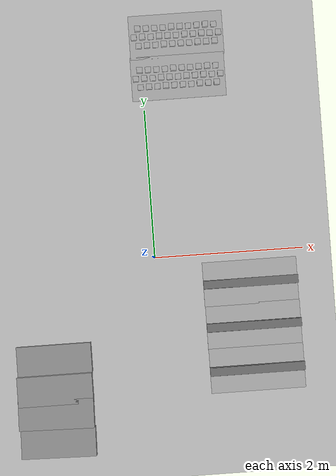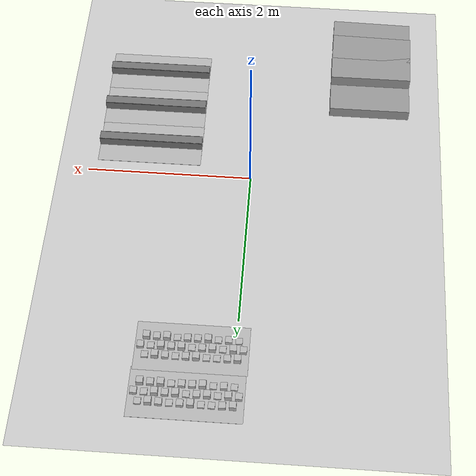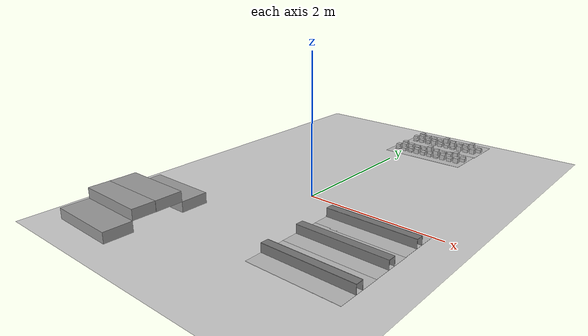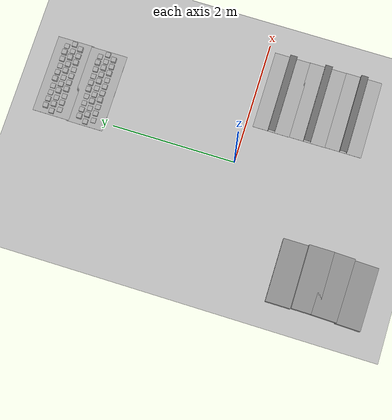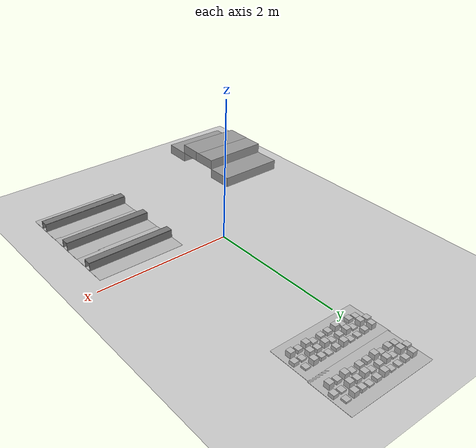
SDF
<sdf version="1.6">
 <world name="default">
  <light name="sun" type="directional">
   <pose>0 0 10 0 -0 0</pose>
   <diffuse>0.8 0.8 0.8 1</diffuse>
   <specular>0.1 0.1 0.1 1</specular>
   <attenuation>
    <range>1000</range>
    <constant>0.9</constant>
    <linear>0.01</linear>
    <quadratic>0.001</quadratic>
   </attenuation>
   <direction>-0.5 0.5 -1</direction>
  </light>
  <model name="ground_plane">
   <static>1</static>
   <link name="link">
    <collision name="collision">
     <geometry><plane><normal>0 0 1</normal><size>100 100</size></plane></geometry>
     <surface><friction><ode><mu>100</mu><mu2>50</mu2></ode></friction></surface>
    </collision>
    <visual name="visual">
     <cast_shadows>0</cast_shadows>
     <geometry><plane><normal>0 0 1</normal><size>100 100</size></plane></geometry>
     <material>
      <script><uri>file://media/materials/scripts/gazebo.material</uri><name>Gazebo/Grey</name></script>
     </material>
    </visual>
   </link>
  </model>
  <gravity>0 0 -9.8</gravity>
  <magnetic_field>6e-06 2.3e-05 -4.2e-05</magnetic_field>
  <atmosphere type="adiabatic"/>
  <physics name="default_physics" default="0" type="ode">
   <max_step_size>0.001</max_step_size>
   <real_time_factor>1</real_time_factor>
   <real_time_update_rate>1000</real_time_update_rate>
  </physics>
  <scene><ambient>0.4 0.4 0.4 1</ambient><background>0.7 0.7 0.7 1</background><shadows>1</shadows></scene>
  <spherical_coordinates>
   <surface_model>EARTH_WGS84</surface_model>
   <latitude_deg>0</latitude_deg>
   <longitude_deg>0</longitude_deg>
   <elevation>0</elevation>
   <heading_deg>0</heading_deg>
  </spherical_coordinates>
  <model name="frc2016_rockwall">
   <static>1</static>
   <link name="link">
    <inertial>
     <mass>10</mass>
     <pose>0 0 0.08974 0 -0 0</pose>
     <inertia><ixx>0.327091</ixx><ixy>0</ixy><ixz>0</ixz><iyy>1.37417</iyy><iyz>0</iyz><izz>1.64109</izz></inertia>
    </inertial>
    <visual name="platform">
     <pose>0 0 0.06432 0 -0 0</pose>
     <geometry><box><size>1.27 0.5969 0.003175</size></box></geometry>
    </visual>
    <collision name="platform">
     <pose>0 0 0.06432 0 -0 0</pose>
     <geometry><box><size>1.27 0.5969 0.003175</size></box></geometry>
    </collision>
    <visual name="up1">
     <pose>0 0.05166 0.12537 0 -0 0</pose>
     <geometry><box><size>1.27 0.00462 0.11892</size></box></geometry>
     <material><ambient>0.46 0.46 0.46 1</ambient><diffuse>0.46 0.46 0.46 1</diffuse></material>
    </visual>
    <collision name="up1">
     <pose>0 0.05166 0.12537 0 -0 0</pose>
     <geometry><box><size>1.27 0.00462 0.11892</size></box></geometry>
    </collision>
    <visual name="up2">
     <pose>0 -0.05801 0.12537 0 -0 0</pose>
     <geometry><box><size>1.27 0.00462 0.11892</size></box></geometry>
     <material><ambient>0.46 0.46 0.46 1</ambient><diffuse>0.46 0.46 0.46 1</diffuse></material>
    </visual>
    <collision name="up2">
     <pose>0 -0.05801 0.12537 0 -0 0</pose>
     <geometry><box><size>1.27 0.00462 0.11892</size></box></geometry>
    </collision>
    <visual name="top">
     <pose>0 -0.00249 0.18252 0 -0 0</pose>
     <geometry><box><size>1.27 0.1143 0.00462</size></box></geometry>
     <material><ambient>0.46 0.46 0.46 1</ambient><diffuse>0.46 0.46 0.46 1</diffuse></material>
    </visual>
    <collision name="top">
     <pose>0 -0.00249 0.18252 0 -0 0</pose>
     <geometry><box><size>1.27 0.1143 0.00462</size></box></geometry>
    </collision>
   </link>
   <pose>1.25957 -0.410415 0 0 -0 0</pose>
  </model>
  <model name="frc2016_rockwall_0">
   <static>1</static>
   <link name="link">
    <inertial>
     <mass>10</mass>
     <pose>0 0 0.08974 0 -0 0</pose>
     <inertia><ixx>0.327091</ixx><ixy>0</ixy><ixz>0</ixz><iyy>1.37417</iyy><iyz>0</iyz><izz>1.64109</izz></inertia>
    </inertial>
    <visual name="platform">
     <pose>0 0 0.06432 0 -0 0</pose>
     <geometry><box><size>1.27 0.5969 0.003175</size></box></geometry>
    </visual>
    <collision name="platform">
     <pose>0 0 0.06432 0 -0 0</pose>
     <geometry><box><size>1.27 0.5969 0.003175</size></box></geometry>
    </collision>
    <visual name="up1">
     <pose>0 0.05166 0.12537 0 -0 0</pose>
     <geometry><box><size>1.27 0.00462 0.11892</size></box></geometry>
     <material><ambient>0.46 0.46 0.46 1</ambient><diffuse>0.46 0.46 0.46 1</diffuse></material>
    </visual>
    <collision name="up1">
     <pose>0 0.05166 0.12537 0 -0 0</pose>
     <geometry><box><size>1.27 0.00462 0.11892</size></box></geometry>
    </collision>
    <visual name="up2">
     <pose>0 -0.05801 0.12537 0 -0 0</pose>
     <geometry><box><size>1.27 0.00462 0.11892</size></box></geometry>
     <material><ambient>0.46 0.46 0.46 1</ambient><diffuse>0.46 0.46 0.46 1</diffuse></material>
    </visual>
    <collision name="up2">
     <pose>0 -0.05801 0.12537 0 -0 0</pose>
     <geometry><box><size>1.27 0.00462 0.11892</size></box></geometry>
    </collision>
    <visual name="top">
     <pose>0 -0.00249 0.18252 0 -0 0</pose>
     <geometry><box><size>1.27 0.1143 0.00462</size></box></geometry>
     <material><ambient>0.46 0.46 0.46 1</ambient><diffuse>0.46 0.46 0.46 1</diffuse></material>
    </visual>
    <collision name="top">
     <pose>0 -0.00249 0.18252 0 -0 0</pose>
     <geometry><box><size>1.27 0.1143 0.00462</size></box></geometry>
    </collision>
   </link>
   <pose>1.26386 -0.989655 0 0 -0 0</pose>
  </model>
  <model name="Untitled_0">
   <pose>-1.4412 -1.46412 0 0 -0 0</pose>
   <link name="Stairs_5">
    <visual name="Stairs_5_Visual_0">
     <pose>0 0.1975 0.075 0 -0 0</pose>
     <geometry><box><size>1 0.395 0.15</size></box></geometry>
     <material>
      <script><uri>file://media/materials/scripts/gazebo.material</uri><name>Gazebo/Grey</name></script>
      <ambient>1 1 1 1</ambient>
     </material>
     <meta><layer>0</layer></meta>
    </visual>
    <collision name="Stairs_5_Collision_0">
     <geometry><box><size>1 0.395 0.15</size></box></geometry>
     <pose>0 0.1975 0.075 0 -0 0</pose>
    </collision>
    <visual name="Stairs_5_Visual_1">
     <pose>0 -0.1975 0.225 0 -0 0</pose>
     <geometry><box><size>1 0.395 0.15</size></box></geometry>
     <material>
      <script><uri>file://media/materials/scripts/gazebo.material</uri><name>Gazebo/Grey</name></script>
      <ambient>1 1 1 1</ambient>
     </material>
     <meta><layer>0</layer></meta>
    </visual>
    <collision name="Stairs_5_Collision_1">
     <geometry><box><size>1 0.395 0.15</size></box></geometry>
     <pose>0 -0.1975 0.225 0 -0 0</pose>
    </collision>
   </link>
   <static>1</static>
  </model>
  <model name="Untitled_0_clone">
   <pose>-1.45162 -2.17803 0 0 -0 3.11909</pose>
   <link name="Stairs_5">
    <visual name="Stairs_5_Visual_0">
     <pose>0 0.1975 0.075 0 -0 0</pose>
     <geometry><box><size>1 0.395 0.15</size></box></geometry>
     <material>
      <script><uri>file://media/materials/scripts/gazebo.material</uri><name>Gazebo/Grey</name></script>
      <ambient>1 1 1 1</ambient>
     </material>
     <meta><layer>0</layer></meta>
    </visual>
    <collision name="Stairs_5_Collision_0">
     <geometry><box><size>1 0.395 0.15</size></box></geometry>
     <pose>0 0.1975 0.075 0 -0 0</pose>
    </collision>
    <visual name="Stairs_5_Visual_1">
     <pose>0 -0.1975 0.225 0 -0 0</pose>
     <geometry><box><size>1 0.395 0.15</size></box></geometry>
     <material>
      <script><uri>file://media/materials/scripts/gazebo.material</uri><name>Gazebo/Grey</name></script>
      <ambient>1 1 1 1</ambient>
     </material>
     <meta><layer>0</layer></meta>
    </visual>
    <collision name="Stairs_5_Collision_1">
     <geometry><box><size>1 0.395 0.15</size></box></geometry>
     <pose>0 -0.1975 0.225 0 -0 0</pose>
    </collision>
   </link>
   <static>1</static>
  </model>
  <model name="frc2016_rockwall_0_clone">
   <static>1</static>
   <link name="link">
    <inertial>
     <mass>10</mass>
     <pose>0 0 0.08974 0 -0 0</pose>
     <inertia><ixx>0.327091</ixx><ixy>0</ixy><ixz>0</ixz><iyy>1.37417</iyy><iyz>0</iyz><izz>1.64109</izz></inertia>
    </inertial>
    <visual name="platform">
     <pose>0 0 0.06432 0 -0 0</pose>
     <geometry><box><size>1.27 0.5969 0.003175</size></box></geometry>
    </visual>
    <collision name="platform">
     <pose>0 0 0.06432 0 -0 0</pose>
     <geometry><box><size>1.27 0.5969 0.003175</size></box></geometry>
    </collision>
    <visual name="up1">
     <pose>0 0.05166 0.12537 0 -0 0</pose>
     <geometry><box><size>1.27 0.00462 0.11892</size></box></geometry>
     <material><ambient>0.46 0.46 0.46 1</ambient><diffuse>0.46 0.46 0.46 1</diffuse></material>
    </visual>
    <collision name="up1">
     <pose>0 0.05166 0.12537 0 -0 0</pose>
     <geometry><box><size>1.27 0.00462 0.11892</size></box></geometry>
    </collision>
    <visual name="up2">
     <pose>0 -0.05801 0.12537 0 -0 0</pose>
     <geometry><box><size>1.27 0.00462 0.11892</size></box></geometry>
     <material><ambient>0.46 0.46 0.46 1</ambient><diffuse>0.46 0.46 0.46 1</diffuse></material>
    </visual>
    <collision name="up2">
     <pose>0 -0.05801 0.12537 0 -0 0</pose>
     <geometry><box><size>1.27 0.00462 0.11892</size></box></geometry>
    </collision>
    <visual name="top">
     <pose>0 -0.00249 0.18252 0 -0 0</pose>
     <geometry><box><size>1.27 0.1143 0.00462</size></box></geometry>
     <material><ambient>0.46 0.46 0.46 1</ambient><diffuse>0.46 0.46 0.46 1</diffuse></material>
    </visual>
    <collision name="top">
     <pose>0 -0.00249 0.18252 0 -0 0</pose>
     <geometry><box><size>1.27 0.1143 0.00462</size></box></geometry>
    </collision>
   </link>
   <pose>1.26719 -1.57524 0 0 -0 0</pose>
  </model>
  <model name="frc2016_roughterrain_0_clone">
   <static>1</static>
   <link name="link">
    <visual name="platform">
     <pose>0 0 0.08269 0 -0 0</pose>
     <geometry><box><size>1.27 0.5969 0.003175</size></box></geometry>
    </visual>
    <collision name="platform">
     <pose>0 0 0.08269 0 -0 0</pose>
     <geometry><box><size>1.27 0.5969 0.003175</size></box></geometry>
    </collision>
    <visual name="row1_block1_sm">
     <pose>0.51435 0.1143 0.09698 0 -0 0</pose>
     <geometry><box><size>0.0762 0.0762 0.0254</size></box></geometry>
    </visual>
    <collision name="row1_block1_sm">
     <pose>0.51435 0.1143 0.09698 0 -0 0</pose>
     <geometry><box><size>0.0762 0.0762 0.0254</size></box></geometry>
    </collision>
    <visual name="row1_block2_lg">
     <pose>0.40005 0.1143 0.12238 0 -0 0</pose>
     <geometry><box><size>0.0762 0.0762 0.0762</size></box></geometry>
    </visual>
    <collision name="row1_block2_lg">
     <pose>0.40005 0.1143 0.12238 0 -0 0</pose>
     <geometry><box><size>0.0762 0.0762 0.0762</size></box></geometry>
    </collision>
    <visual name="row1_block3_md">
     <pose>0.28575 0.1143 0.10968 0 -0 0</pose>
     <geometry><box><size>0.0762 0.0762 0.0508</size></box></geometry>
    </visual>
    <collision name="row1_block3_md">
     <pose>0.28575 0.1143 0.10968 0 -0 0</pose>
     <geometry><box><size>0.0762 0.0762 0.0508</size></box></geometry>
    </collision>
    <visual name="row1_block4_sm">
     <pose>0.17145 0.1143 0.09698 0 -0 0</pose>
     <geometry><box><size>0.0762 0.0762 0.0254</size></box></geometry>
    </visual>
    <collision name="row1_block4_sm">
     <pose>0.17145 0.1143 0.09698 0 -0 0</pose>
     <geometry><box><size>0.0762 0.0762 0.0254</size></box></geometry>
    </collision>
    <visual name="row1_block5_md">
     <pose>0.05715 0.1143 0.10968 0 -0 0</pose>
     <geometry><box><size>0.0762 0.0762 0.0508</size></box></geometry>
    </visual>
    <collision name="row1_block5_md">
     <pose>0.05715 0.1143 0.10968 0 -0 0</pose>
     <geometry><box><size>0.0762 0.0762 0.0508</size></box></geometry>
    </collision>
    <visual name="row1_block6_lg">
     <pose>-0.05715 0.1143 0.12238 0 -0 0</pose>
     <geometry><box><size>0.0762 0.0762 0.0762</size></box></geometry>
    </visual>
    <collision name="row1_block6_lg">
     <pose>-0.05715 0.1143 0.12238 0 -0 0</pose>
     <geometry><box><size>0.0762 0.0762 0.0762</size></box></geometry>
    </collision>
    <visual name="row1_block7_sm">
     <pose>-0.17145 0.1143 0.09698 0 -0 0</pose>
     <geometry><box><size>0.0762 0.0762 0.0254</size></box></geometry>
    </visual>
    <collision name="row1_block7_sm">
     <pose>-0.17145 0.1143 0.09698 0 -0 0</pose>
     <geometry><box><size>0.0762 0.0762 0.0254</size></box></geometry>
    </collision>
    <visual name="row1_block8_sm">
     <pose>-0.28575 0.1143 0.09698 0 -0 0</pose>
     <geometry><box><size>0.0762 0.0762 0.0254</size></box></geometry>
    </visual>
    <collision name="row1_block8_sm">
     <pose>-0.28575 0.1143 0.09698 0 -0 0</pose>
     <geometry><box><size>0.0762 0.0762 0.0254</size></box></geometry>
    </collision>
    <visual name="row1_block9_md">
     <pose>-0.40005 0.1143 0.10968 0 -0 0</pose>
     <geometry><box><size>0.0762 0.0762 0.0508</size></box></geometry>
    </visual>
    <collision name="row1_block9_md">
     <pose>-0.40005 0.1143 0.10968 0 -0 0</pose>
     <geometry><box><size>0.0762 0.0762 0.0508</size></box></geometry>
    </collision>
    <visual name="row1_block10_lg">
     <pose>-0.51435 0.1143 0.12238 0 -0 0</pose>
     <geometry><box><size>0.0762 0.0762 0.0762</size></box></geometry>
    </visual>
    <collision name="row1_block10_lg">
     <pose>-0.51435 0.1143 0.12238 0 -0 0</pose>
     <geometry><box><size>0.0762 0.0762 0.0762</size></box></geometry>
    </collision>
    <visual name="row2_block1_md">
     <pose>0.5715 0 0.10968 0 -0 0</pose>
     <geometry><box><size>0.0762 0.0762 0.0508</size></box></geometry>
    </visual>
    <collision name="row2_block1_md">
     <pose>0.5715 0 0.10968 0 -0 0</pose>
     <geometry><box><size>0.0762 0.0762 0.0508</size></box></geometry>
    </collision>
    <visual name="row2_block2_sm">
     <pose>0.4572 0 0.09698 0 -0 0</pose>
     <geometry><box><size>0.0762 0.0762 0.0254</size></box></geometry>
    </visual>
    <collision name="row2_block2_sm">
     <pose>0.4572 0 0.09698 0 -0 0</pose>
     <geometry><box><size>0.0762 0.0762 0.0254</size></box></geometry>
    </collision>
    <visual name="row2_block3_lg">
     <pose>0.3429 0 0.12238 0 -0 0</pose>
     <geometry><box><size>0.0762 0.0762 0.0762</size></box></geometry>
    </visual>
    <collision name="row2_block3_lg">
     <pose>0.3429 0 0.12238 0 -0 0</pose>
     <geometry><box><size>0.0762 0.0762 0.0762</size></box></geometry>
    </collision>
    <visual name="row2_block4_md">
     <pose>0.2286 0 0.10968 0 -0 0</pose>
     <geometry><box><size>0.0762 0.0762 0.0508</size></box></geometry>
    </visual>
    <collision name="row2_block4_md">
     <pose>0.2286 0 0.10968 0 -0 0</pose>
     <geometry><box><size>0.0762 0.0762 0.0508</size></box></geometry>
    </collision>
    <visual name="row2_block5_lg">
     <pose>0.1143 0 0.12238 0 -0 0</pose>
     <geometry><box><size>0.0762 0.0762 0.0762</size></box></geometry>
    </visual>
    <collision name="row2_block5_lg">
     <pose>0.1143 0 0.12238 0 -0 0</pose>
     <geometry><box><size>0.0762 0.0762 0.0762</size></box></geometry>
    </collision>
    <visual name="row2_block6_sm">
     <pose>0 0 0.09698 0 -0 0</pose>
     <geometry><box><size>0.0762 0.0762 0.0254</size></box></geometry>
    </visual>
    <collision name="row2_block6_sm">
     <pose>0 0 0.09698 0 -0 0</pose>
     <geometry><box><size>0.0762 0.0762 0.0254</size></box></geometry>
    </collision>
    <visual name="row2_block7_md">
     <pose>-0.1143 0 0.10968 0 -0 0</pose>
     <geometry><box><size>0.0762 0.0762 0.0508</size></box></geometry>
    </visual>
    <collision name="row2_block7_md">
     <pose>-0.1143 0 0.10968 0 -0 0</pose>
     <geometry><box><size>0.0762 0.0762 0.0508</size></box></geometry>
    </collision>
    <visual name="row2_block8_lg">
     <pose>-0.2286 0 0.12238 0 -0 0</pose>
     <geometry><box><size>0.0762 0.0762 0.0762</size></box></geometry>
    </visual>
    <collision name="row2_block8_lg">
     <pose>-0.2286 0 0.12238 0 -0 0</pose>
     <geometry><box><size>0.0762 0.0762 0.0762</size></box></geometry>
    </collision>
    <visual name="row2_block9_sm">
     <pose>-0.3429 0 0.09698 0 -0 0</pose>
     <geometry><box><size>0.0762 0.0762 0.0254</size></box></geometry>
    </visual>
    <collision name="row2_block9_sm">
     <pose>-0.3429 0 0.09698 0 -0 0</pose>
     <geometry><box><size>0.0762 0.0762 0.0254</size></box></geometry>
    </collision>
    <visual name="row2_block10_lg">
     <pose>-0.4572 0 0.12238 0 -0 0</pose>
     <geometry><box><size>0.0762 0.0762 0.0762</size></box></geometry>
    </visual>
    <collision name="row2_block10_lg">
     <pose>-0.4572 0 0.12238 0 -0 0</pose>
     <geometry><box><size>0.0762 0.0762 0.0762</size></box></geometry>
    </collision>
    <visual name="row2_block11_md">
     <pose>-0.5715 0 0.10968 0 -0 0</pose>
     <geometry><box><size>0.0762 0.0762 0.0508</size></box></geometry>
    </visual>
    <collision name="row2_block11_md">
     <pose>-0.5715 0 0.10968 0 -0 0</pose>
     <geometry><box><size>0.0762 0.0762 0.0508</size></box></geometry>
    </collision>
    <visual name="row3_block1_lg">
     <pose>0.51435 -0.1143 0.12238 0 -0 0</pose>
     <geometry><box><size>0.0762 0.0762 0.0762</size></box></geometry>
    </visual>
    <collision name="row3_block1_lg">
     <pose>0.51435 -0.1143 0.12238 0 -0 0</pose>
     <geometry><box><size>0.0762 0.0762 0.0762</size></box></geometry>
    </collision>
    <visual name="row3_block2_md">
     <pose>0.40005 -0.1143 0.10968 0 -0 0</pose>
     <geometry><box><size>0.0762 0.0762 0.0508</size></box></geometry>
    </visual>
    <collision name="row3_block2_md">
     <pose>0.40005 -0.1143 0.10968 0 -0 0</pose>
     <geometry><box><size>0.0762 0.0762 0.0508</size></box></geometry>
    </collision>
    <visual name="row3_block3_lg">
     <pose>0.28575 -0.1143 0.12238 0 -0 0</pose>
     <geometry><box><size>0.0762 0.0762 0.0762</size></box></geometry>
    </visual>
    <collision name="row3_block3_lg">
     <pose>0.28575 -0.1143 0.12238 0 -0 0</pose>
     <geometry><box><size>0.0762 0.0762 0.0762</size></box></geometry>
    </collision>
    <visual name="row3_block4_sm">
     <pose>0.17145 -0.1143 0.09698 0 -0 0</pose>
     <geometry><box><size>0.0762 0.0762 0.0254</size></box></geometry>
    </visual>
    <collision name="row3_block4_sm">
     <pose>0.17145 -0.1143 0.09698 0 -0 0</pose>
     <geometry><box><size>0.0762 0.0762 0.0254</size></box></geometry>
    </collision>
    <visual name="row3_block5_md">
     <pose>0.05715 -0.1143 0.10968 0 -0 0</pose>
     <geometry><box><size>0.0762 0.0762 0.0508</size></box></geometry>
    </visual>
    <collision name="row3_block5_md">
     <pose>0.05715 -0.1143 0.10968 0 -0 0</pose>
     <geometry><box><size>0.0762 0.0762 0.0508</size></box></geometry>
    </collision>
    <visual name="row3_block6_md">
     <pose>-0.05715 -0.1143 0.10968 0 -0 0</pose>
     <geometry><box><size>0.0762 0.0762 0.0508</size></box></geometry>
    </visual>
    <collision name="row3_block6_md">
     <pose>-0.05715 -0.1143 0.10968 0 -0 0</pose>
     <geometry><box><size>0.0762 0.0762 0.0508</size></box></geometry>
    </collision>
    <visual name="row3_block7_lg">
     <pose>-0.17145 -0.1143 0.12238 0 -0 0</pose>
     <geometry><box><size>0.0762 0.0762 0.0762</size></box></geometry>
    </visual>
    <collision name="row3_block7_lg">
     <pose>-0.17145 -0.1143 0.12238 0 -0 0</pose>
     <geometry><box><size>0.0762 0.0762 0.0762</size></box></geometry>
    </collision>
    <visual name="row3_block8_sm">
     <pose>-0.28575 -0.1143 0.09698 0 -0 0</pose>
     <geometry><box><size>0.0762 0.0762 0.0254</size></box></geometry>
    </visual>
    <collision name="row3_block8_sm">
     <pose>-0.28575 -0.1143 0.09698 0 -0 0</pose>
     <geometry><box><size>0.0762 0.0762 0.0254</size></box></geometry>
    </collision>
    <visual name="row3_block9_md">
     <pose>-0.40005 -0.1143 0.10968 0 -0 0</pose>
     <geometry><box><size>0.0762 0.0762 0.0508</size></box></geometry>
    </visual>
    <collision name="row3_block9_md">
     <pose>-0.40005 -0.1143 0.10968 0 -0 0</pose>
     <geometry><box><size>0.0762 0.0762 0.0508</size></box></geometry>
    </collision>
    <visual name="row3_block10_sm">
     <pose>-0.51435 -0.1143 0.09698 0 -0 0</pose>
     <geometry><box><size>0.0762 0.0762 0.0254</size></box></geometry>
    </visual>
    <collision name="row3_block10_sm">
     <pose>-0.51435 -0.1143 0.09698 0 -0 0</pose>
     <geometry><box><size>0.0762 0.0762 0.0254</size></box></geometry>
    </collision>
   </link>
   <pose>0.496317 2.98351 0 0 -0 0</pose>
  </model>
  <model name="frc2016_roughterrain_0_clone_clone">
   <static>1</static>
   <link name="link">
    <visual name="platform">
     <pose>0 0 0.08269 0 -0 0</pose>
     <geometry><box><size>1.27 0.5969 0.003175</size></box></geometry>
    </visual>
    <collision name="platform">
     <pose>0 0 0.08269 0 -0 0</pose>
     <geometry><box><size>1.27 0.5969 0.003175</size></box></geometry>
    </collision>
    <visual name="row1_block1_sm">
     <pose>0.51435 0.1143 0.09698 0 -0 0</pose>
     <geometry><box><size>0.0762 0.0762 0.0254</size></box></geometry>
    </visual>
    <collision name="row1_block1_sm">
     <pose>0.51435 0.1143 0.09698 0 -0 0</pose>
     <geometry><box><size>0.0762 0.0762 0.0254</size></box></geometry>
    </collision>
    <visual name="row1_block2_lg">
     <pose>0.40005 0.1143 0.12238 0 -0 0</pose>
     <geometry><box><size>0.0762 0.0762 0.0762</size></box></geometry>
    </visual>
    <collision name="row1_block2_lg">
     <pose>0.40005 0.1143 0.12238 0 -0 0</pose>
     <geometry><box><size>0.0762 0.0762 0.0762</size></box></geometry>
    </collision>
    <visual name="row1_block3_md">
     <pose>0.28575 0.1143 0.10968 0 -0 0</pose>
     <geometry><box><size>0.0762 0.0762 0.0508</size></box></geometry>
    </visual>
    <collision name="row1_block3_md">
     <pose>0.28575 0.1143 0.10968 0 -0 0</pose>
     <geometry><box><size>0.0762 0.0762 0.0508</size></box></geometry>
    </collision>
    <visual name="row1_block4_sm">
     <pose>0.17145 0.1143 0.09698 0 -0 0</pose>
     <geometry><box><size>0.0762 0.0762 0.0254</size></box></geometry>
    </visual>
    <collision name="row1_block4_sm">
     <pose>0.17145 0.1143 0.09698 0 -0 0</pose>
     <geometry><box><size>0.0762 0.0762 0.0254</size></box></geometry>
    </collision>
    <visual name="row1_block5_md">
     <pose>0.05715 0.1143 0.10968 0 -0 0</pose>
     <geometry><box><size>0.0762 0.0762 0.0508</size></box></geometry>
    </visual>
    <collision name="row1_block5_md">
     <pose>0.05715 0.1143 0.10968 0 -0 0</pose>
     <geometry><box><size>0.0762 0.0762 0.0508</size></box></geometry>
    </collision>
    <visual name="row1_block6_lg">
     <pose>-0.05715 0.1143 0.12238 0 -0 0</pose>
     <geometry><box><size>0.0762 0.0762 0.0762</size></box></geometry>
    </visual>
    <collision name="row1_block6_lg">
     <pose>-0.05715 0.1143 0.12238 0 -0 0</pose>
     <geometry><box><size>0.0762 0.0762 0.0762</size></box></geometry>
    </collision>
    <visual name="row1_block7_sm">
     <pose>-0.17145 0.1143 0.09698 0 -0 0</pose>
     <geometry><box><size>0.0762 0.0762 0.0254</size></box></geometry>
    </visual>
    <collision name="row1_block7_sm">
     <pose>-0.17145 0.1143 0.09698 0 -0 0</pose>
     <geometry><box><size>0.0762 0.0762 0.0254</size></box></geometry>
    </collision>
    <visual name="row1_block8_sm">
     <pose>-0.28575 0.1143 0.09698 0 -0 0</pose>
     <geometry><box><size>0.0762 0.0762 0.0254</size></box></geometry>
    </visual>
    <collision name="row1_block8_sm">
     <pose>-0.28575 0.1143 0.09698 0 -0 0</pose>
     <geometry><box><size>0.0762 0.0762 0.0254</size></box></geometry>
    </collision>
    <visual name="row1_block9_md">
     <pose>-0.40005 0.1143 0.10968 0 -0 0</pose>
     <geometry><box><size>0.0762 0.0762 0.0508</size></box></geometry>
    </visual>
    <collision name="row1_block9_md">
     <pose>-0.40005 0.1143 0.10968 0 -0 0</pose>
     <geometry><box><size>0.0762 0.0762 0.0508</size></box></geometry>
    </collision>
    <visual name="row1_block10_lg">
     <pose>-0.51435 0.1143 0.12238 0 -0 0</pose>
     <geometry><box><size>0.0762 0.0762 0.0762</size></box></geometry>
    </visual>
    <collision name="row1_block10_lg">
     <pose>-0.51435 0.1143 0.12238 0 -0 0</pose>
     <geometry><box><size>0.0762 0.0762 0.0762</size></box></geometry>
    </collision>
    <visual name="row2_block1_md">
     <pose>0.5715 0 0.10968 0 -0 0</pose>
     <geometry><box><size>0.0762 0.0762 0.0508</size></box></geometry>
    </visual>
    <collision name="row2_block1_md">
     <pose>0.5715 0 0.10968 0 -0 0</pose>
     <geometry><box><size>0.0762 0.0762 0.0508</size></box></geometry>
    </collision>
    <visual name="row2_block2_sm">
     <pose>0.4572 0 0.09698 0 -0 0</pose>
     <geometry><box><size>0.0762 0.0762 0.0254</size></box></geometry>
    </visual>
    <collision name="row2_block2_sm">
     <pose>0.4572 0 0.09698 0 -0 0</pose>
     <geometry><box><size>0.0762 0.0762 0.0254</size></box></geometry>
    </collision>
    <visual name="row2_block3_lg">
     <pose>0.3429 0 0.12238 0 -0 0</pose>
     <geometry><box><size>0.0762 0.0762 0.0762</size></box></geometry>
    </visual>
    <collision name="row2_block3_lg">
     <pose>0.3429 0 0.12238 0 -0 0</pose>
     <geometry><box><size>0.0762 0.0762 0.0762</size></box></geometry>
    </collision>
    <visual name="row2_block4_md">
     <pose>0.2286 0 0.10968 0 -0 0</pose>
     <geometry><box><size>0.0762 0.0762 0.0508</size></box></geometry>
    </visual>
    <collision name="row2_block4_md">
     <pose>0.2286 0 0.10968 0 -0 0</pose>
     <geometry><box><size>0.0762 0.0762 0.0508</size></box></geometry>
    </collision>
    <visual name="row2_block5_lg">
     <pose>0.1143 0 0.12238 0 -0 0</pose>
     <geometry><box><size>0.0762 0.0762 0.0762</size></box></geometry>
    </visual>
    <collision name="row2_block5_lg">
     <pose>0.1143 0 0.12238 0 -0 0</pose>
     <geometry><box><size>0.0762 0.0762 0.0762</size></box></geometry>
    </collision>
    <visual name="row2_block6_sm">
     <pose>0 0 0.09698 0 -0 0</pose>
     <geometry><box><size>0.0762 0.0762 0.0254</size></box></geometry>
    </visual>
    <collision name="row2_block6_sm">
     <pose>0 0 0.09698 0 -0 0</pose>
     <geometry><box><size>0.0762 0.0762 0.0254</size></box></geometry>
    </collision>
    <visual name="row2_block7_md">
     <pose>-0.1143 0 0.10968 0 -0 0</pose>
     <geometry><box><size>0.0762 0.0762 0.0508</size></box></geometry>
    </visual>
    <collision name="row2_block7_md">
     <pose>-0.1143 0 0.10968 0 -0 0</pose>
     <geometry><box><size>0.0762 0.0762 0.0508</size></box></geometry>
    </collision>
    <visual name="row2_block8_lg">
     <pose>-0.2286 0 0.12238 0 -0 0</pose>
     <geometry><box><size>0.0762 0.0762 0.0762</size></box></geometry>
    </visual>
    <collision name="row2_block8_lg">
     <pose>-0.2286 0 0.12238 0 -0 0</pose>
     <geometry><box><size>0.0762 0.0762 0.0762</size></box></geometry>
    </collision>
    <visual name="row2_block9_sm">
     <pose>-0.3429 0 0.09698 0 -0 0</pose>
     <geometry><box><size>0.0762 0.0762 0.0254</size></box></geometry>
    </visual>
    <collision name="row2_block9_sm">
     <pose>-0.3429 0 0.09698 0 -0 0</pose>
     <geometry><box><size>0.0762 0.0762 0.0254</size></box></geometry>
    </collision>
    <visual name="row2_block10_lg">
     <pose>-0.4572 0 0.12238 0 -0 0</pose>
     <geometry><box><size>0.0762 0.0762 0.0762</size></box></geometry>
    </visual>
    <collision name="row2_block10_lg">
     <pose>-0.4572 0 0.12238 0 -0 0</pose>
     <geometry><box><size>0.0762 0.0762 0.0762</size></box></geometry>
    </collision>
    <visual name="row2_block11_md">
     <pose>-0.5715 0 0.10968 0 -0 0</pose>
     <geometry><box><size>0.0762 0.0762 0.0508</size></box></geometry>
    </visual>
    <collision name="row2_block11_md">
     <pose>-0.5715 0 0.10968 0 -0 0</pose>
     <geometry><box><size>0.0762 0.0762 0.0508</size></box></geometry>
    </collision>
    <visual name="row3_block1_lg">
     <pose>0.51435 -0.1143 0.12238 0 -0 0</pose>
     <geometry><box><size>0.0762 0.0762 0.0762</size></box></geometry>
    </visual>
    <collision name="row3_block1_lg">
     <pose>0.51435 -0.1143 0.12238 0 -0 0</pose>
     <geometry><box><size>0.0762 0.0762 0.0762</size></box></geometry>
    </collision>
    <visual name="row3_block2_md">
     <pose>0.40005 -0.1143 0.10968 0 -0 0</pose>
     <geometry><box><size>0.0762 0.0762 0.0508</size></box></geometry>
    </visual>
    <collision name="row3_block2_md">
     <pose>0.40005 -0.1143 0.10968 0 -0 0</pose>
     <geometry><box><size>0.0762 0.0762 0.0508</size></box></geometry>
    </collision>
    <visual name="row3_block3_lg">
     <pose>0.28575 -0.1143 0.12238 0 -0 0</pose>
     <geometry><box><size>0.0762 0.0762 0.0762</size></box></geometry>
    </visual>
    <collision name="row3_block3_lg">
     <pose>0.28575 -0.1143 0.12238 0 -0 0</pose>
     <geometry><box><size>0.0762 0.0762 0.0762</size></box></geometry>
    </collision>
    <visual name="row3_block4_sm">
     <pose>0.17145 -0.1143 0.09698 0 -0 0</pose>
     <geometry><box><size>0.0762 0.0762 0.0254</size></box></geometry>
    </visual>
    <collision name="row3_block4_sm">
     <pose>0.17145 -0.1143 0.09698 0 -0 0</pose>
     <geometry><box><size>0.0762 0.0762 0.0254</size></box></geometry>
    </collision>
    <visual name="row3_block5_md">
     <pose>0.05715 -0.1143 0.10968 0 -0 0</pose>
     <geometry><box><size>0.0762 0.0762 0.0508</size></box></geometry>
    </visual>
    <collision name="row3_block5_md">
     <pose>0.05715 -0.1143 0.10968 0 -0 0</pose>
     <geometry><box><size>0.0762 0.0762 0.0508</size></box></geometry>
    </collision>
    <visual name="row3_block6_md">
     <pose>-0.05715 -0.1143 0.10968 0 -0 0</pose>
     <geometry><box><size>0.0762 0.0762 0.0508</size></box></geometry>
    </visual>
    <collision name="row3_block6_md">
     <pose>-0.05715 -0.1143 0.10968 0 -0 0</pose>
     <geometry><box><size>0.0762 0.0762 0.0508</size></box></geometry>
    </collision>
    <visual name="row3_block7_lg">
     <pose>-0.17145 -0.1143 0.12238 0 -0 0</pose>
     <geometry><box><size>0.0762 0.0762 0.0762</size></box></geometry>
    </visual>
    <collision name="row3_block7_lg">
     <pose>-0.17145 -0.1143 0.12238 0 -0 0</pose>
     <geometry><box><size>0.0762 0.0762 0.0762</size></box></geometry>
    </collision>
    <visual name="row3_block8_sm">
     <pose>-0.28575 -0.1143 0.09698 0 -0 0</pose>
     <geometry><box><size>0.0762 0.0762 0.0254</size></box></geometry>
    </visual>
    <collision name="row3_block8_sm">
     <pose>-0.28575 -0.1143 0.09698 0 -0 0</pose>
     <geometry><box><size>0.0762 0.0762 0.0254</size></box></geometry>
    </collision>
    <visual name="row3_block9_md">
     <pose>-0.40005 -0.1143 0.10968 0 -0 0</pose>
     <geometry><box><size>0.0762 0.0762 0.0508</size></box></geometry>
    </visual>
    <collision name="row3_block9_md">
     <pose>-0.40005 -0.1143 0.10968 0 -0 0</pose>
     <geometry><box><size>0.0762 0.0762 0.0508</size></box></geometry>
    </collision>
    <visual name="row3_block10_sm">
     <pose>-0.51435 -0.1143 0.09698 0 -0 0</pose>
     <geometry><box><size>0.0762 0.0762 0.0254</size></box></geometry>
    </visual>
    <collision name="row3_block10_sm">
     <pose>-0.51435 -0.1143 0.09698 0 -0 0</pose>
     <geometry><box><size>0.0762 0.0762 0.0254</size></box></geometry>
    </collision>
   </link>
   <pose>0.485249 2.42188 0 0 -0 0</pose>
  </model>
 </world>
</sdf>
